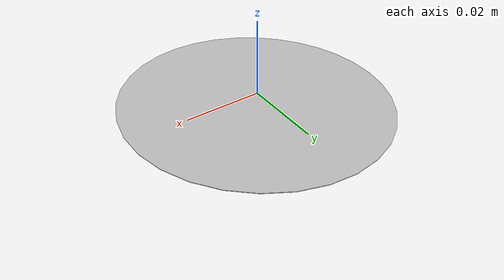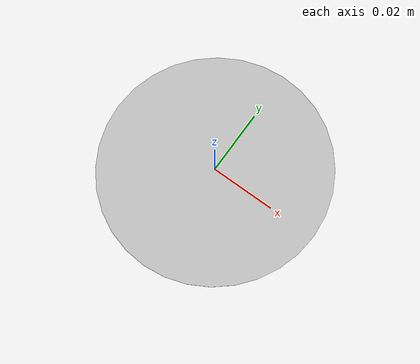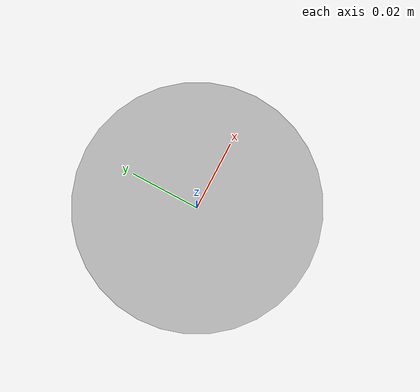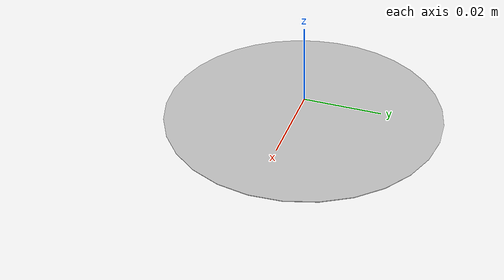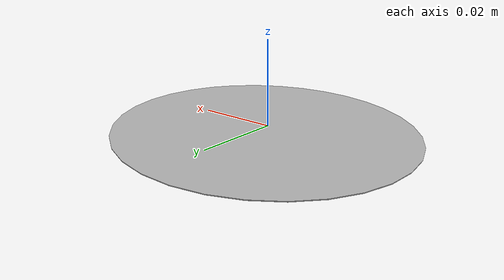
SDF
<?xml version="1.0"?>
<sdf version='1.4'>
    <model name="max_speed">
        <static>1</static>
        <link name="link_1">
            <visual name='visual'>
                <pose frame=''>0 0 0 0 0 0</pose>
                <geometry>
                    <mesh>
                        <uri>model://max_speed/meshes/max_speed.dae</uri>
                    </mesh>
                </geometry>
            </visual>
        </link>
    </model>
</sdf>
